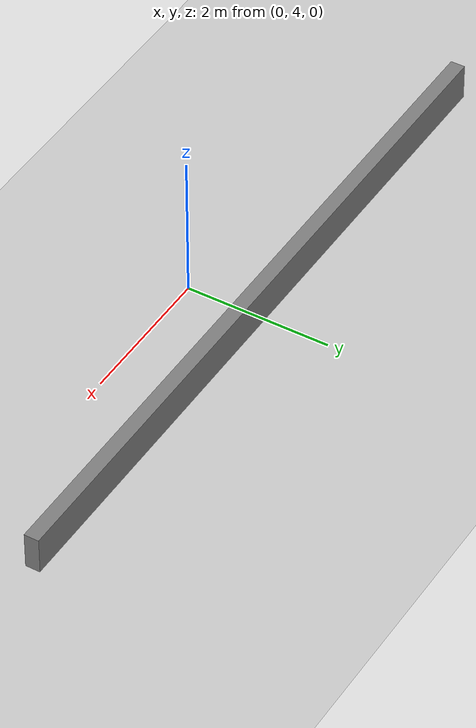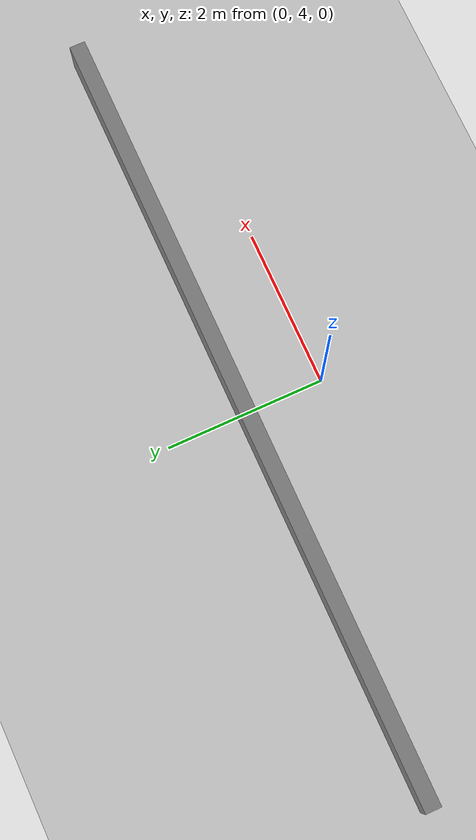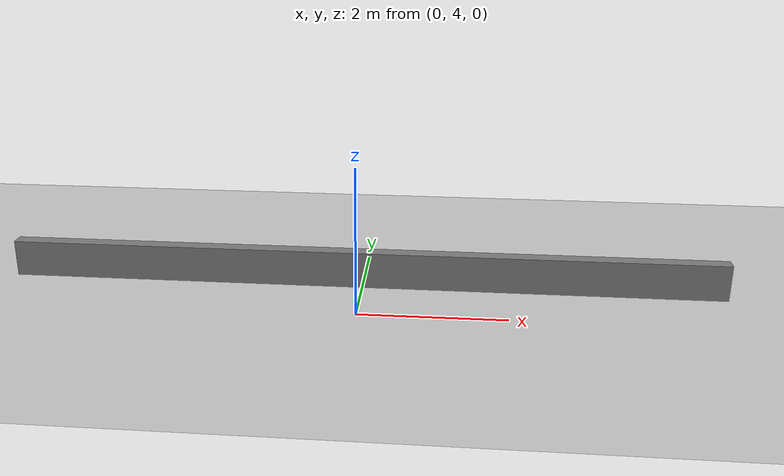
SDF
<?xml version="1.0" ?>
<sdf version="1.6">
  <world name="factory_world">
    <include>
      <uri>model://ground_plane</uri>
    </include>
    <include>
      <uri>model://sun</uri>
    </include>
    <!-- Simple walls -->
    <model name="wall1">
      <pose>0 5 0 0 0 0</pose>
      <link name="link">
        <collision name="collision">
          <geometry><box><size>10 0.2 1</size></box></geometry>
        </collision>
        <visual name="visual">
          <geometry><box><size>10 0.2 1</size></box></geometry>
          <material><ambient>0.5 0.5 0.5 1</ambient></material>
        </visual>
      </link>
    </model>
    <gravity>0 0 -9.81</gravity>
    <physics type="ode"/>
  </world>
</sdf>
